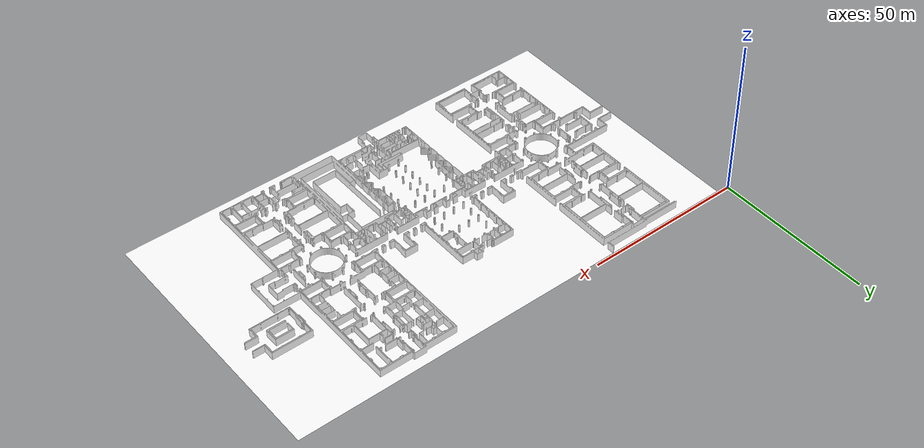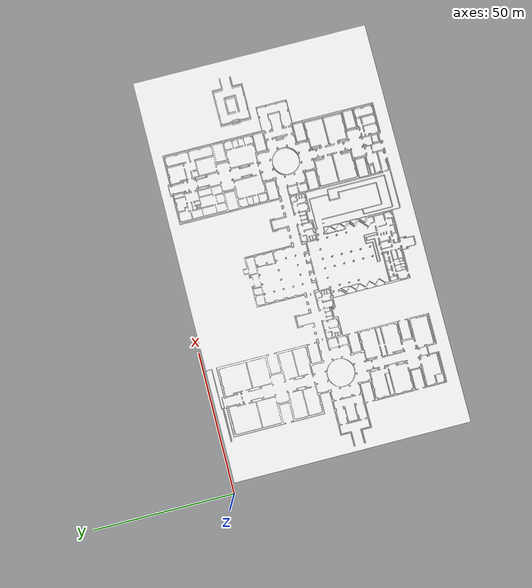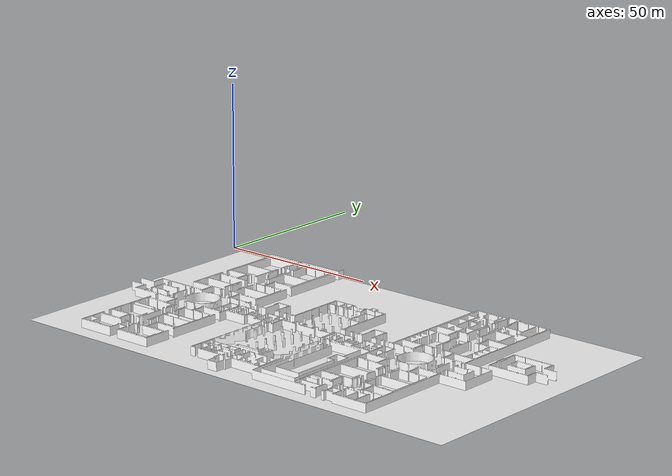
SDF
<?xml version='1.0' encoding='utf-8'?>
<sdf version="1.7">
  <model name="TD_def_TD_n0">
    <static>true</static>
    <link name="floor_1">
      <visual name="visual">
        <geometry>
          <mesh>
            <uri>model://TD_def_TD_n0/meshes/floor_1.obj</uri>
          </mesh>
        </geometry>
        <material>
          <diffuse>1.0 1.0 1.0</diffuse>
          <specular>0.1 0.1 0.1</specular>
          <pbr>
            <metal>
              <metalness>0.0</metalness>
              <albedo_map>model://TD_def_TD_n0/meshes/blue_linoleum.png</albedo_map>
            </metal>
          </pbr>
          <script>
            <uri>model://TD_def_TD_n0/meshes/</uri>
            <name>floor_1_Diffuse</name>
          </script>
        </material>
      </visual>
      <collision name="collision">
        <geometry>
          <mesh>
            <uri>model://TD_def_TD_n0/meshes/floor_1.obj</uri>
          </mesh>
        </geometry>
        <surface>
          <contact>
            <collide_bitmask>0x01</collide_bitmask>
          </contact>
        </surface>
      </collision>
    </link>
    <link name="wall_1">
      <visual name="wall_1">
        <geometry>
          <mesh>
            <uri>model://TD_def_TD_n0/meshes/wall_1.obj</uri>
          </mesh>
        </geometry>
        <transparency>0.0</transparency>
        <material>
          <diffuse>1.0 1.0 1.0</diffuse>
          <specular>0.1 0.1 0.1</specular>
          <pbr>
            <metal>
              <metalness>0.0</metalness>
              <albedo_map>model://TD_def_TD_n0/meshes/default.png</albedo_map>
            </metal>
          </pbr>
          <script>
            <uri>model://TD_def_TD_n0/meshes/</uri>
            <name>wall_1_Diffuse</name>
          </script>
        </material>
      </visual>
      <collision name="collision">
        <geometry>
          <mesh>
            <uri>model://TD_def_TD_n0/meshes/wall_1.obj</uri>
          </mesh>
        </geometry>
        <surface>
          <contact>
            <collide_bitmask>0x01</collide_bitmask>
          </contact>
        </surface>
      </collision>
      <pose>5.5298658945906976 -82.76561965053901 0 0 0 0</pose>
    </link>
  </model>
</sdf>
